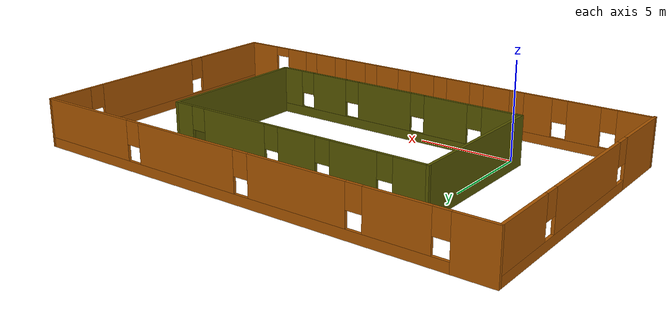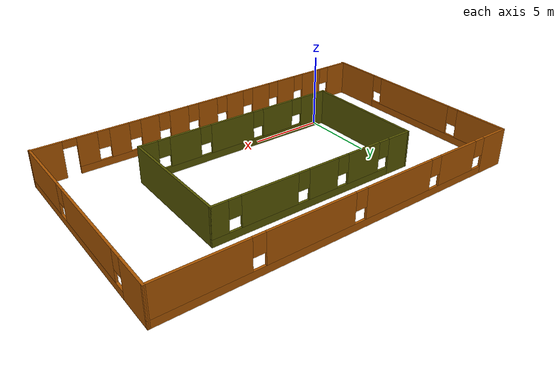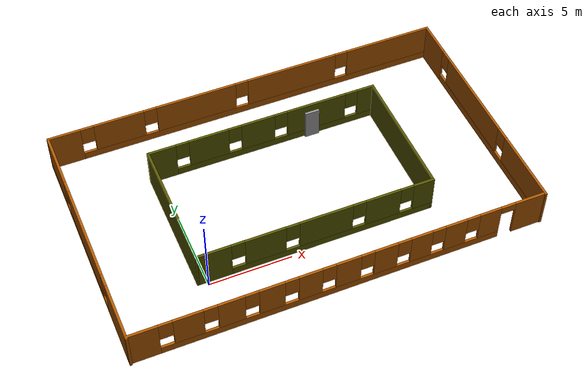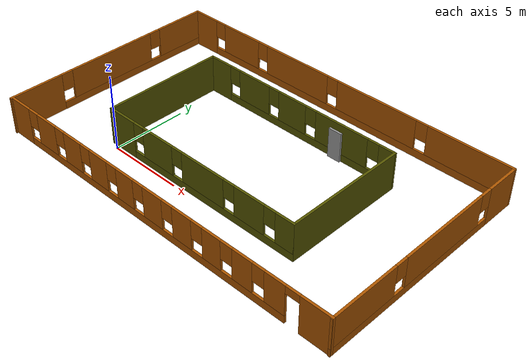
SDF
<?xml version='1.0'?>
<sdf version='1.6'>
  <model name='Building'>
    <pose frame=''>6.81216 4.24314 0 0 -0 0</pose>
    <link name='Door_1'>
      <collision name='Door_1_Collision'>
        <geometry>
          <box>
            <size>0.9 0.17 2</size>
          </box>
        </geometry>
        <pose frame=''>0 0 1 0 -0 0</pose>
      </collision>
      <visual name='Door_1_Visual'>
        <pose frame=''>0 0 1 0 -0 0</pose>
        <geometry>
          <box>
            <size>0.9 0.17 2</size>
          </box>
        </geometry>
        <material>
          <script>
            <uri>file://media/materials/scripts/gazebo.material</uri>
            <name>Gazebo/Grey</name>
          </script>
        </material>
      </visual>
      <pose frame=''>2.94986 3.99433 0 0 -0 0</pose>
    </link>
    <link name='Wall_0'>
      <pose frame=''>0 -7.35763 0 0 -0 0.002401</pose>
      <visual name='Wall_0_Visual_0'>
        <pose frame=''>-11.5578 0 1.25 0 -0 0</pose>
        <geometry>
          <box>
            <size>1.79475 0.15 2.5</size>
          </box>
        </geometry>
        <material>
          <script>
            <uri>file://media/materials/scripts/gazebo.material</uri>
            <name>Gazebo/Grey</name>
          </script>
          <ambient>0.666667 0.333333 0 1</ambient>
        </material>
        <meta>
          <layer>0</layer>
        </meta>
      </visual>
      <collision name='Wall_0_Collision_0'>
        <geometry>
          <box>
            <size>1.79475 0.15 2.5</size>
          </box>
        </geometry>
        <pose frame=''>-11.5578 0 1.25 0 -0 0</pose>
      </collision>
      <visual name='Wall_0_Visual_1'>
        <pose frame=''>11.4641 0 1.25 0 -0 0</pose>
        <geometry>
          <box>
            <size>1.98215 0.15 2.5</size>
          </box>
        </geometry>
        <material>
          <script>
            <uri>file://media/materials/scripts/gazebo.material</uri>
            <name>Gazebo/Grey</name>
          </script>
          <ambient>0.666667 0.333333 0 1</ambient>
        </material>
        <meta>
          <layer>0</layer>
        </meta>
      </visual>
      <collision name='Wall_0_Collision_1'>
        <geometry>
          <box>
            <size>1.98215 0.15 2.5</size>
          </box>
        </geometry>
        <pose frame=''>11.4641 0 1.25 0 -0 0</pose>
      </collision>
      <visual name='Wall_0_Visual_2'>
        <pose frame=''>-0.543697 0 0.25 0 -0 0</pose>
        <geometry>
          <box>
            <size>20.2334 0.15 0.5</size>
          </box>
        </geometry>
        <material>
          <script>
            <uri>file://media/materials/scripts/gazebo.material</uri>
            <name>Gazebo/Grey</name>
          </script>
          <ambient>0.666667 0.333333 0 1</ambient>
        </material>
        <meta>
          <layer>0</layer>
        </meta>
      </visual>
      <collision name='Wall_0_Collision_2'>
        <geometry>
          <box>
            <size>20.2334 0.15 0.5</size>
          </box>
        </geometry>
        <pose frame=''>-0.543697 0 0.25 0 -0 0</pose>
      </collision>
      <visual name='Wall_0_Visual_3'>
        <pose frame=''>-9.00211 0 1.5 0 -0 0</pose>
        <geometry>
          <box>
            <size>1.71659 0.15 2</size>
          </box>
        </geometry>
        <material>
          <script>
            <uri>file://media/materials/scripts/gazebo.material</uri>
            <name>Gazebo/Grey</name>
          </script>
          <ambient>0.666667 0.333333 0 1</ambient>
        </material>
        <meta>
          <layer>0</layer>
        </meta>
      </visual>
      <collision name='Wall_0_Collision_3'>
        <geometry>
          <box>
            <size>1.71659 0.15 2</size>
          </box>
        </geometry>
        <pose frame=''>-9.00211 0 1.5 0 -0 0</pose>
      </collision>
      <visual name='Wall_0_Visual_4'>
        <pose frame=''>-6.57805 0 1.5 0 -0 0</pose>
        <geometry>
          <box>
            <size>1.53154 0.15 2</size>
          </box>
        </geometry>
        <material>
          <script>
            <uri>file://media/materials/scripts/gazebo.material</uri>
            <name>Gazebo/Grey</name>
          </script>
          <ambient>0.666667 0.333333 0 1</ambient>
        </material>
        <meta>
          <layer>0</layer>
        </meta>
      </visual>
      <collision name='Wall_0_Collision_4'>
        <geometry>
          <box>
            <size>1.53154 0.15 2</size>
          </box>
        </geometry>
        <pose frame=''>-6.57805 0 1.5 0 -0 0</pose>
      </collision>
      <visual name='Wall_0_Visual_5'>
        <pose frame=''>-4.26501 0 1.5 0 -0 0</pose>
        <geometry>
          <box>
            <size>1.49454 0.15 2</size>
          </box>
        </geometry>
        <material>
          <script>
            <uri>file://media/materials/scripts/gazebo.material</uri>
            <name>Gazebo/Grey</name>
          </script>
          <ambient>0.666667 0.333333 0 1</ambient>
        </material>
        <meta>
          <layer>0</layer>
        </meta>
      </visual>
      <collision name='Wall_0_Collision_5'>
        <geometry>
          <box>
            <size>1.49454 0.15 2</size>
          </box>
        </geometry>
        <pose frame=''>-4.26501 0 1.5 0 -0 0</pose>
      </collision>
      <visual name='Wall_0_Visual_6'>
        <pose frame=''>-2.02311 0 1.5 0 -0 0</pose>
        <geometry>
          <box>
            <size>1.38925 0.15 2</size>
          </box>
        </geometry>
        <material>
          <script>
            <uri>file://media/materials/scripts/gazebo.material</uri>
            <name>Gazebo/Grey</name>
          </script>
          <ambient>0.666667 0.333333 0 1</ambient>
        </material>
        <meta>
          <layer>0</layer>
        </meta>
      </visual>
      <collision name='Wall_0_Collision_6'>
        <geometry>
          <box>
            <size>1.38925 0.15 2</size>
          </box>
        </geometry>
        <pose frame=''>-2.02311 0 1.5 0 -0 0</pose>
      </collision>
      <visual name='Wall_0_Visual_7'>
        <pose frame=''>0.21591 0 1.5 0 -0 0</pose>
        <geometry>
          <box>
            <size>1.48879 0.15 2</size>
          </box>
        </geometry>
        <material>
          <script>
            <uri>file://media/materials/scripts/gazebo.material</uri>
            <name>Gazebo/Grey</name>
          </script>
          <ambient>0.666667 0.333333 0 1</ambient>
        </material>
        <meta>
          <layer>0</layer>
        </meta>
      </visual>
      <collision name='Wall_0_Collision_7'>
        <geometry>
          <box>
            <size>1.48879 0.15 2</size>
          </box>
        </geometry>
        <pose frame=''>0.21591 0 1.5 0 -0 0</pose>
      </collision>
      <visual name='Wall_0_Visual_8'>
        <pose frame=''>2.47057 0 1.5 0 -0 0</pose>
        <geometry>
          <box>
            <size>1.42052 0.15 2</size>
          </box>
        </geometry>
        <material>
          <script>
            <uri>file://media/materials/scripts/gazebo.material</uri>
            <name>Gazebo/Grey</name>
          </script>
          <ambient>0.666667 0.333333 0 1</ambient>
        </material>
        <meta>
          <layer>0</layer>
        </meta>
      </visual>
      <collision name='Wall_0_Collision_8'>
        <geometry>
          <box>
            <size>1.42052 0.15 2</size>
          </box>
        </geometry>
        <pose frame=''>2.47057 0 1.5 0 -0 0</pose>
      </collision>
      <visual name='Wall_0_Visual_9'>
        <pose frame=''>4.63557 0 1.5 0 -0 0</pose>
        <geometry>
          <box>
            <size>1.30949 0.15 2</size>
          </box>
        </geometry>
        <material>
          <script>
            <uri>file://media/materials/scripts/gazebo.material</uri>
            <name>Gazebo/Grey</name>
          </script>
          <ambient>0.666667 0.333333 0 1</ambient>
        </material>
        <meta>
          <layer>0</layer>
        </meta>
      </visual>
      <collision name='Wall_0_Collision_9'>
        <geometry>
          <box>
            <size>1.30949 0.15 2</size>
          </box>
        </geometry>
        <pose frame=''>4.63557 0 1.5 0 -0 0</pose>
      </collision>
      <visual name='Wall_0_Visual_10'>
        <pose frame=''>6.76357 0 1.5 0 -0 0</pose>
        <geometry>
          <box>
            <size>1.3465 0.15 2</size>
          </box>
        </geometry>
        <material>
          <script>
            <uri>file://media/materials/scripts/gazebo.material</uri>
            <name>Gazebo/Grey</name>
          </script>
          <ambient>0.666667 0.333333 0 1</ambient>
        </material>
        <meta>
          <layer>0</layer>
        </meta>
      </visual>
      <collision name='Wall_0_Collision_10'>
        <geometry>
          <box>
            <size>1.3465 0.15 2</size>
          </box>
        </geometry>
        <pose frame=''>6.76357 0 1.5 0 -0 0</pose>
      </collision>
      <visual name='Wall_0_Visual_11'>
        <pose frame=''>8.90492 0 1.5 0 -0 0</pose>
        <geometry>
          <box>
            <size>1.33619 0.15 2</size>
          </box>
        </geometry>
        <material>
          <script>
            <uri>file://media/materials/scripts/gazebo.material</uri>
            <name>Gazebo/Grey</name>
          </script>
          <ambient>0.666667 0.333333 0 1</ambient>
        </material>
        <meta>
          <layer>0</layer>
        </meta>
      </visual>
      <collision name='Wall_0_Collision_11'>
        <geometry>
          <box>
            <size>1.33619 0.15 2</size>
          </box>
        </geometry>
        <pose frame=''>8.90492 0 1.5 0 -0 0</pose>
      </collision>
      <visual name='Wall_0_Visual_12'>
        <pose frame=''>-10.2604 0 1.9 0 -0 0</pose>
        <geometry>
          <box>
            <size>0.8 0.15 1.2</size>
          </box>
        </geometry>
        <material>
          <script>
            <uri>file://media/materials/scripts/gazebo.material</uri>
            <name>Gazebo/Grey</name>
          </script>
          <ambient>0.666667 0.333333 0 1</ambient>
        </material>
        <meta>
          <layer>0</layer>
        </meta>
      </visual>
      <collision name='Wall_0_Collision_12'>
        <geometry>
          <box>
            <size>0.8 0.15 1.2</size>
          </box>
        </geometry>
        <pose frame=''>-10.2604 0 1.9 0 -0 0</pose>
      </collision>
      <visual name='Wall_0_Visual_13'>
        <pose frame=''>-7.74382 0 1.9 0 -0 0</pose>
        <geometry>
          <box>
            <size>0.8 0.15 1.2</size>
          </box>
        </geometry>
        <material>
          <script>
            <uri>file://media/materials/scripts/gazebo.material</uri>
            <name>Gazebo/Grey</name>
          </script>
          <ambient>0.666667 0.333333 0 1</ambient>
        </material>
        <meta>
          <layer>0</layer>
        </meta>
      </visual>
      <collision name='Wall_0_Collision_13'>
        <geometry>
          <box>
            <size>0.8 0.15 1.2</size>
          </box>
        </geometry>
        <pose frame=''>-7.74382 0 1.9 0 -0 0</pose>
      </collision>
      <visual name='Wall_0_Visual_14'>
        <pose frame=''>-5.41228 0 1.9 0 -0 0</pose>
        <geometry>
          <box>
            <size>0.8 0.15 1.2</size>
          </box>
        </geometry>
        <material>
          <script>
            <uri>file://media/materials/scripts/gazebo.material</uri>
            <name>Gazebo/Grey</name>
          </script>
          <ambient>0.666667 0.333333 0 1</ambient>
        </material>
        <meta>
          <layer>0</layer>
        </meta>
      </visual>
      <collision name='Wall_0_Collision_14'>
        <geometry>
          <box>
            <size>0.8 0.15 1.2</size>
          </box>
        </geometry>
        <pose frame=''>-5.41228 0 1.9 0 -0 0</pose>
      </collision>
      <visual name='Wall_0_Visual_15'>
        <pose frame=''>-3.11774 0 1.9 0 -0 0</pose>
        <geometry>
          <box>
            <size>0.8 0.15 1.2</size>
          </box>
        </geometry>
        <material>
          <script>
            <uri>file://media/materials/scripts/gazebo.material</uri>
            <name>Gazebo/Grey</name>
          </script>
          <ambient>0.666667 0.333333 0 1</ambient>
        </material>
        <meta>
          <layer>0</layer>
        </meta>
      </visual>
      <collision name='Wall_0_Collision_15'>
        <geometry>
          <box>
            <size>0.8 0.15 1.2</size>
          </box>
        </geometry>
        <pose frame=''>-3.11774 0 1.9 0 -0 0</pose>
      </collision>
      <visual name='Wall_0_Visual_16'>
        <pose frame=''>-0.928486 0 1.9 0 -0 0</pose>
        <geometry>
          <box>
            <size>0.8 0.15 1.2</size>
          </box>
        </geometry>
        <material>
          <script>
            <uri>file://media/materials/scripts/gazebo.material</uri>
            <name>Gazebo/Grey</name>
          </script>
          <ambient>0.666667 0.333333 0 1</ambient>
        </material>
        <meta>
          <layer>0</layer>
        </meta>
      </visual>
      <collision name='Wall_0_Collision_16'>
        <geometry>
          <box>
            <size>0.8 0.15 1.2</size>
          </box>
        </geometry>
        <pose frame=''>-0.928486 0 1.9 0 -0 0</pose>
      </collision>
      <visual name='Wall_0_Visual_17'>
        <pose frame=''>1.36031 0 1.9 0 -0 0</pose>
        <geometry>
          <box>
            <size>0.8 0.15 1.2</size>
          </box>
        </geometry>
        <material>
          <script>
            <uri>file://media/materials/scripts/gazebo.material</uri>
            <name>Gazebo/Grey</name>
          </script>
          <ambient>0.666667 0.333333 0 1</ambient>
        </material>
        <meta>
          <layer>0</layer>
        </meta>
      </visual>
      <collision name='Wall_0_Collision_17'>
        <geometry>
          <box>
            <size>0.8 0.15 1.2</size>
          </box>
        </geometry>
        <pose frame=''>1.36031 0 1.9 0 -0 0</pose>
      </collision>
      <visual name='Wall_0_Visual_18'>
        <pose frame=''>3.58083 0 1.9 0 -0 0</pose>
        <geometry>
          <box>
            <size>0.8 0.15 1.2</size>
          </box>
        </geometry>
        <material>
          <script>
            <uri>file://media/materials/scripts/gazebo.material</uri>
            <name>Gazebo/Grey</name>
          </script>
          <ambient>0.666667 0.333333 0 1</ambient>
        </material>
        <meta>
          <layer>0</layer>
        </meta>
      </visual>
      <collision name='Wall_0_Collision_18'>
        <geometry>
          <box>
            <size>0.8 0.15 1.2</size>
          </box>
        </geometry>
        <pose frame=''>3.58083 0 1.9 0 -0 0</pose>
      </collision>
      <visual name='Wall_0_Visual_19'>
        <pose frame=''>5.69032 0 1.9 0 -0 0</pose>
        <geometry>
          <box>
            <size>0.8 0.15 1.2</size>
          </box>
        </geometry>
        <material>
          <script>
            <uri>file://media/materials/scripts/gazebo.material</uri>
            <name>Gazebo/Grey</name>
          </script>
          <ambient>0.666667 0.333333 0 1</ambient>
        </material>
        <meta>
          <layer>0</layer>
        </meta>
      </visual>
      <collision name='Wall_0_Collision_19'>
        <geometry>
          <box>
            <size>0.8 0.15 1.2</size>
          </box>
        </geometry>
        <pose frame=''>5.69032 0 1.9 0 -0 0</pose>
      </collision>
      <visual name='Wall_0_Visual_20'>
        <pose frame=''>7.83682 0 1.9 0 -0 0</pose>
        <geometry>
          <box>
            <size>0.8 0.15 1.2</size>
          </box>
        </geometry>
        <material>
          <script>
            <uri>file://media/materials/scripts/gazebo.material</uri>
            <name>Gazebo/Grey</name>
          </script>
          <ambient>0.666667 0.333333 0 1</ambient>
        </material>
        <meta>
          <layer>0</layer>
        </meta>
      </visual>
      <collision name='Wall_0_Collision_20'>
        <geometry>
          <box>
            <size>0.8 0.15 1.2</size>
          </box>
        </geometry>
        <pose frame=''>7.83682 0 1.9 0 -0 0</pose>
      </collision>
      <visual name='Wall_0_Visual_21'>
        <pose frame=''>10.023 0 2.25 0 -0 0</pose>
        <geometry>
          <box>
            <size>0.9 0.15 0.5</size>
          </box>
        </geometry>
        <material>
          <script>
            <uri>file://media/materials/scripts/gazebo.material</uri>
            <name>Gazebo/Grey</name>
          </script>
          <ambient>0.666667 0.333333 0 1</ambient>
        </material>
        <meta>
          <layer>0</layer>
        </meta>
      </visual>
      <collision name='Wall_0_Collision_21'>
        <geometry>
          <box>
            <size>0.9 0.15 0.5</size>
          </box>
        </geometry>
        <pose frame=''>10.023 0 2.25 0 -0 0</pose>
      </collision>
    </link>
    <link name='Wall_12'>
      <collision name='Wall_12_Collision'>
        <geometry>
          <box>
            <size>8.25 0.15 2.5</size>
          </box>
        </geometry>
        <pose frame=''>0 0 1.25 0 -0 0</pose>
      </collision>
      <visual name='Wall_12_Visual'>
        <pose frame=''>0 0 1.25 0 -0 0</pose>
        <geometry>
          <box>
            <size>8.25 0.15 2.5</size>
          </box>
        </geometry>
        <material>
          <script>
            <uri>file://media/materials/scripts/gazebo.material</uri>
            <name>Gazebo/Grey</name>
          </script>
          <ambient>0.333333 0.333333 0 1</ambient>
        </material>
        <meta>
          <layer>0</layer>
        </meta>
      </visual>
      <pose frame=''>-7.34158 0.069621 0 0 0 -1.5708</pose>
    </link>
    <link name='Wall_17'>
      <pose frame=''>-0.166583 -3.98038 0 0 -0 0</pose>
      <visual name='Wall_17_Visual_0'>
        <pose frame=''>-6.19156 0 1.25 0 -0 0</pose>
        <geometry>
          <box>
            <size>2.11688 0.15 2.5</size>
          </box>
        </geometry>
        <material>
          <script>
            <uri>file://media/materials/scripts/gazebo.material</uri>
            <name>Gazebo/Grey</name>
          </script>
          <ambient>0.333333 0.333333 0 1</ambient>
        </material>
        <meta>
          <layer>0</layer>
        </meta>
      </visual>
      <collision name='Wall_17_Collision_0'>
        <geometry>
          <box>
            <size>2.11688 0.15 2.5</size>
          </box>
        </geometry>
        <pose frame=''>-6.19156 0 1.25 0 -0 0</pose>
      </collision>
      <visual name='Wall_17_Visual_1'>
        <pose frame=''>1.05844 0 0.25 0 -0 0</pose>
        <geometry>
          <box>
            <size>12.3831 0.15 0.5</size>
          </box>
        </geometry>
        <material>
          <script>
            <uri>file://media/materials/scripts/gazebo.material</uri>
            <name>Gazebo/Grey</name>
          </script>
          <ambient>0.333333 0.333333 0 1</ambient>
        </material>
        <meta>
          <layer>0</layer>
        </meta>
      </visual>
      <collision name='Wall_17_Collision_1'>
        <geometry>
          <box>
            <size>12.3831 0.15 0.5</size>
          </box>
        </geometry>
        <pose frame=''>1.05844 0 0.25 0 -0 0</pose>
      </collision>
      <visual name='Wall_17_Visual_2'>
        <pose frame=''>-3.10907 0 1.5 0 -0 0</pose>
        <geometry>
          <box>
            <size>2.4481 0.15 2</size>
          </box>
        </geometry>
        <material>
          <script>
            <uri>file://media/materials/scripts/gazebo.material</uri>
            <name>Gazebo/Grey</name>
          </script>
          <ambient>0.333333 0.333333 0 1</ambient>
        </material>
        <meta>
          <layer>0</layer>
        </meta>
      </visual>
      <collision name='Wall_17_Collision_2'>
        <geometry>
          <box>
            <size>2.4481 0.15 2</size>
          </box>
        </geometry>
        <pose frame=''>-3.10907 0 1.5 0 -0 0</pose>
      </collision>
      <visual name='Wall_17_Visual_3'>
        <pose frame=''>0.545036 0 1.5 0 -0 0</pose>
        <geometry>
          <box>
            <size>3.26012 0.15 2</size>
          </box>
        </geometry>
        <material>
          <script>
            <uri>file://media/materials/scripts/gazebo.material</uri>
            <name>Gazebo/Grey</name>
          </script>
          <ambient>0.333333 0.333333 0 1</ambient>
        </material>
        <meta>
          <layer>0</layer>
        </meta>
      </visual>
      <collision name='Wall_17_Collision_3'>
        <geometry>
          <box>
            <size>3.26012 0.15 2</size>
          </box>
        </geometry>
        <pose frame=''>0.545036 0 1.5 0 -0 0</pose>
      </collision>
      <visual name='Wall_17_Visual_4'>
        <pose frame=''>4.05839 0 1.5 0 -0 0</pose>
        <geometry>
          <box>
            <size>2.1666 0.15 2</size>
          </box>
        </geometry>
        <material>
          <script>
            <uri>file://media/materials/scripts/gazebo.material</uri>
            <name>Gazebo/Grey</name>
          </script>
          <ambient>0.333333 0.333333 0 1</ambient>
        </material>
        <meta>
          <layer>0</layer>
        </meta>
      </visual>
      <collision name='Wall_17_Collision_4'>
        <geometry>
          <box>
            <size>2.1666 0.15 2</size>
          </box>
        </geometry>
        <pose frame=''>4.05839 0 1.5 0 -0 0</pose>
      </collision>
      <visual name='Wall_17_Visual_5'>
        <pose frame=''>6.59585 0 1.5 0 -0 0</pose>
        <geometry>
          <box>
            <size>1.30831 0.15 2</size>
          </box>
        </geometry>
        <material>
          <script>
            <uri>file://media/materials/scripts/gazebo.material</uri>
            <name>Gazebo/Grey</name>
          </script>
          <ambient>0.333333 0.333333 0 1</ambient>
        </material>
        <meta>
          <layer>0</layer>
        </meta>
      </visual>
      <collision name='Wall_17_Collision_5'>
        <geometry>
          <box>
            <size>1.30831 0.15 2</size>
          </box>
        </geometry>
        <pose frame=''>6.59585 0 1.5 0 -0 0</pose>
      </collision>
      <visual name='Wall_17_Visual_6'>
        <pose frame=''>-4.73312 0 1.9 0 -0 0</pose>
        <geometry>
          <box>
            <size>0.8 0.15 1.2</size>
          </box>
        </geometry>
        <material>
          <script>
            <uri>file://media/materials/scripts/gazebo.material</uri>
            <name>Gazebo/Grey</name>
          </script>
          <ambient>0.333333 0.333333 0 1</ambient>
        </material>
        <meta>
          <layer>0</layer>
        </meta>
      </visual>
      <collision name='Wall_17_Collision_6'>
        <geometry>
          <box>
            <size>0.8 0.15 1.2</size>
          </box>
        </geometry>
        <pose frame=''>-4.73312 0 1.9 0 -0 0</pose>
      </collision>
      <visual name='Wall_17_Visual_7'>
        <pose frame=''>-1.48502 0 1.9 0 -0 0</pose>
        <geometry>
          <box>
            <size>0.8 0.15 1.2</size>
          </box>
        </geometry>
        <material>
          <script>
            <uri>file://media/materials/scripts/gazebo.material</uri>
            <name>Gazebo/Grey</name>
          </script>
          <ambient>0.333333 0.333333 0 1</ambient>
        </material>
        <meta>
          <layer>0</layer>
        </meta>
      </visual>
      <collision name='Wall_17_Collision_7'>
        <geometry>
          <box>
            <size>0.8 0.15 1.2</size>
          </box>
        </geometry>
        <pose frame=''>-1.48502 0 1.9 0 -0 0</pose>
      </collision>
      <visual name='Wall_17_Visual_8'>
        <pose frame=''>2.5751 0 1.9 0 -0 0</pose>
        <geometry>
          <box>
            <size>0.8 0.15 1.2</size>
          </box>
        </geometry>
        <material>
          <script>
            <uri>file://media/materials/scripts/gazebo.material</uri>
            <name>Gazebo/Grey</name>
          </script>
          <ambient>0.333333 0.333333 0 1</ambient>
        </material>
        <meta>
          <layer>0</layer>
        </meta>
      </visual>
      <collision name='Wall_17_Collision_8'>
        <geometry>
          <box>
            <size>0.8 0.15 1.2</size>
          </box>
        </geometry>
        <pose frame=''>2.5751 0 1.9 0 -0 0</pose>
      </collision>
      <visual name='Wall_17_Visual_9'>
        <pose frame=''>5.54169 0 1.9 0 -0 0</pose>
        <geometry>
          <box>
            <size>0.8 0.15 1.2</size>
          </box>
        </geometry>
        <material>
          <script>
            <uri>file://media/materials/scripts/gazebo.material</uri>
            <name>Gazebo/Grey</name>
          </script>
          <ambient>0.333333 0.333333 0 1</ambient>
        </material>
        <meta>
          <layer>0</layer>
        </meta>
      </visual>
      <collision name='Wall_17_Collision_9'>
        <geometry>
          <box>
            <size>0.8 0.15 1.2</size>
          </box>
        </geometry>
        <pose frame=''>5.54169 0 1.9 0 -0 0</pose>
      </collision>
    </link>
    <link name='Wall_18'>
      <collision name='Wall_18_Collision'>
        <geometry>
          <box>
            <size>8.25 0.15 2.5</size>
          </box>
        </geometry>
        <pose frame=''>0 0 1.25 0 -0 0</pose>
      </collision>
      <visual name='Wall_18_Visual'>
        <pose frame=''>0 0 1.25 0 -0 0</pose>
        <geometry>
          <box>
            <size>8.25 0.15 2.5</size>
          </box>
        </geometry>
        <material>
          <script>
            <uri>file://media/materials/scripts/gazebo.material</uri>
            <name>Gazebo/Grey</name>
          </script>
          <ambient>0.333333 0.333333 0 1</ambient>
        </material>
        <meta>
          <layer>0</layer>
        </meta>
      </visual>
      <pose frame=''>7.00842 0.069621 0 0 -0 1.5708</pose>
    </link>
    <link name='Wall_20'>
      <pose frame=''>-0.166583 4.11962 0 0 -0 0</pose>
      <visual name='Wall_20_Visual_0'>
        <pose frame=''>-6.37201 0 1.25 0 -0 0</pose>
        <geometry>
          <box>
            <size>1.75598 0.15 2.5</size>
          </box>
        </geometry>
        <material>
          <script>
            <uri>file://media/materials/scripts/gazebo.material</uri>
            <name>Gazebo/Grey</name>
          </script>
          <ambient>0.333333 0.333333 0 1</ambient>
        </material>
        <meta>
          <layer>0</layer>
        </meta>
      </visual>
      <collision name='Wall_20_Collision_0'>
        <geometry>
          <box>
            <size>1.75598 0.15 2.5</size>
          </box>
        </geometry>
        <pose frame=''>-6.37201 0 1.25 0 -0 0</pose>
      </collision>
      <visual name='Wall_20_Visual_1'>
        <pose frame=''>0.87799 0 0.25 0 -0 0</pose>
        <geometry>
          <box>
            <size>12.744 0.15 0.5</size>
          </box>
        </geometry>
        <material>
          <script>
            <uri>file://media/materials/scripts/gazebo.material</uri>
            <name>Gazebo/Grey</name>
          </script>
          <ambient>0.333333 0.333333 0 1</ambient>
        </material>
        <meta>
          <layer>0</layer>
        </meta>
      </visual>
      <collision name='Wall_20_Collision_1'>
        <geometry>
          <box>
            <size>12.744 0.15 0.5</size>
          </box>
        </geometry>
        <pose frame=''>0.87799 0 0.25 0 -0 0</pose>
      </collision>
      <visual name='Wall_20_Visual_2'>
        <pose frame=''>-3.44742 0 1.5 0 -0 0</pose>
        <geometry>
          <box>
            <size>2.49321 0.15 2</size>
          </box>
        </geometry>
        <material>
          <script>
            <uri>file://media/materials/scripts/gazebo.material</uri>
            <name>Gazebo/Grey</name>
          </script>
          <ambient>0.333333 0.333333 0 1</ambient>
        </material>
        <meta>
          <layer>0</layer>
        </meta>
      </visual>
      <collision name='Wall_20_Collision_2'>
        <geometry>
          <box>
            <size>2.49321 0.15 2</size>
          </box>
        </geometry>
        <pose frame=''>-3.44742 0 1.5 0 -0 0</pose>
      </collision>
      <visual name='Wall_20_Visual_3'>
        <pose frame=''>-0.334657 0 1.5 0 -0 0</pose>
        <geometry>
          <box>
            <size>2.13231 0.15 2</size>
          </box>
        </geometry>
        <material>
          <script>
            <uri>file://media/materials/scripts/gazebo.material</uri>
            <name>Gazebo/Grey</name>
          </script>
          <ambient>0.333333 0.333333 0 1</ambient>
        </material>
        <meta>
          <layer>0</layer>
        </meta>
      </visual>
      <collision name='Wall_20_Collision_3'>
        <geometry>
          <box>
            <size>2.13231 0.15 2</size>
          </box>
        </geometry>
        <pose frame=''>-0.334657 0 1.5 0 -0 0</pose>
      </collision>
      <visual name='Wall_20_Visual_4'>
        <pose frame=''>3.43223 0 1.5 0 -0 0</pose>
        <geometry>
          <box>
            <size>3.80147 0.15 2</size>
          </box>
        </geometry>
        <material>
          <script>
            <uri>file://media/materials/scripts/gazebo.material</uri>
            <name>Gazebo/Grey</name>
          </script>
          <ambient>0.333333 0.333333 0 1</ambient>
        </material>
        <meta>
          <layer>0</layer>
        </meta>
      </visual>
      <collision name='Wall_20_Collision_4'>
        <geometry>
          <box>
            <size>3.80147 0.15 2</size>
          </box>
        </geometry>
        <pose frame=''>3.43223 0 1.5 0 -0 0</pose>
      </collision>
      <visual name='Wall_20_Visual_5'>
        <pose frame=''>6.69148 0 1.5 0 -0 0</pose>
        <geometry>
          <box>
            <size>1.11703 0.15 2</size>
          </box>
        </geometry>
        <material>
          <script>
            <uri>file://media/materials/scripts/gazebo.material</uri>
            <name>Gazebo/Grey</name>
          </script>
          <ambient>0.333333 0.333333 0 1</ambient>
        </material>
        <meta>
          <layer>0</layer>
        </meta>
      </visual>
      <collision name='Wall_20_Collision_5'>
        <geometry>
          <box>
            <size>1.11703 0.15 2</size>
          </box>
        </geometry>
        <pose frame=''>6.69148 0 1.5 0 -0 0</pose>
      </collision>
      <visual name='Wall_20_Visual_6'>
        <pose frame=''>-5.09402 0 1.9 0 -0 0</pose>
        <geometry>
          <box>
            <size>0.8 0.15 1.2</size>
          </box>
        </geometry>
        <material>
          <script>
            <uri>file://media/materials/scripts/gazebo.material</uri>
            <name>Gazebo/Grey</name>
          </script>
          <ambient>0.333333 0.333333 0 1</ambient>
        </material>
        <meta>
          <layer>0</layer>
        </meta>
      </visual>
      <collision name='Wall_20_Collision_6'>
        <geometry>
          <box>
            <size>0.8 0.15 1.2</size>
          </box>
        </geometry>
        <pose frame=''>-5.09402 0 1.9 0 -0 0</pose>
      </collision>
      <visual name='Wall_20_Visual_7'>
        <pose frame=''>-1.80081 0 1.9 0 -0 0</pose>
        <geometry>
          <box>
            <size>0.8 0.15 1.2</size>
          </box>
        </geometry>
        <material>
          <script>
            <uri>file://media/materials/scripts/gazebo.material</uri>
            <name>Gazebo/Grey</name>
          </script>
          <ambient>0.333333 0.333333 0 1</ambient>
        </material>
        <meta>
          <layer>0</layer>
        </meta>
      </visual>
      <collision name='Wall_20_Collision_7'>
        <geometry>
          <box>
            <size>0.8 0.15 1.2</size>
          </box>
        </geometry>
        <pose frame=''>-1.80081 0 1.9 0 -0 0</pose>
      </collision>
      <visual name='Wall_20_Visual_8'>
        <pose frame=''>1.1315 0 1.9 0 -0 0</pose>
        <geometry>
          <box>
            <size>0.8 0.15 1.2</size>
          </box>
        </geometry>
        <material>
          <script>
            <uri>file://media/materials/scripts/gazebo.material</uri>
            <name>Gazebo/Grey</name>
          </script>
          <ambient>0.333333 0.333333 0 1</ambient>
        </material>
        <meta>
          <layer>0</layer>
        </meta>
      </visual>
      <collision name='Wall_20_Collision_8'>
        <geometry>
          <box>
            <size>0.8 0.15 1.2</size>
          </box>
        </geometry>
        <pose frame=''>1.1315 0 1.9 0 -0 0</pose>
      </collision>
      <visual name='Wall_20_Visual_9'>
        <pose frame=''>5.73297 0 1.9 0 -0 0</pose>
        <geometry>
          <box>
            <size>0.8 0.15 1.2</size>
          </box>
        </geometry>
        <material>
          <script>
            <uri>file://media/materials/scripts/gazebo.material</uri>
            <name>Gazebo/Grey</name>
          </script>
          <ambient>0.333333 0.333333 0 1</ambient>
        </material>
        <meta>
          <layer>0</layer>
        </meta>
      </visual>
      <collision name='Wall_20_Collision_9'>
        <geometry>
          <box>
            <size>0.8 0.15 1.2</size>
          </box>
        </geometry>
        <pose frame=''>5.73297 0 1.9 0 -0 0</pose>
      </collision>
    </link>
    <link name='Wall_3'>
      <pose frame=''>-12.3798 -0.052578 0 0 -0 1.5708</pose>
      <visual name='Wall_3_Visual_0'>
        <pose frame=''>-5.67059 0 1.25 0 -0 0</pose>
        <geometry>
          <box>
            <size>3.65881 0.15 2.5</size>
          </box>
        </geometry>
        <material>
          <script>
            <uri>file://media/materials/scripts/gazebo.material</uri>
            <name>Gazebo/Grey</name>
          </script>
          <ambient>0.666667 0.333333 0 1</ambient>
        </material>
        <meta>
          <layer>0</layer>
        </meta>
      </visual>
      <collision name='Wall_3_Collision_0'>
        <geometry>
          <box>
            <size>3.65881 0.15 2.5</size>
          </box>
        </geometry>
        <pose frame=''>-5.67059 0 1.25 0 -0 0</pose>
      </collision>
      <visual name='Wall_3_Visual_1'>
        <pose frame=''>1.8294 0 0.25 0 -0 0</pose>
        <geometry>
          <box>
            <size>11.3412 0.15 0.5</size>
          </box>
        </geometry>
        <material>
          <script>
            <uri>file://media/materials/scripts/gazebo.material</uri>
            <name>Gazebo/Grey</name>
          </script>
          <ambient>0.666667 0.333333 0 1</ambient>
        </material>
        <meta>
          <layer>0</layer>
        </meta>
      </visual>
      <collision name='Wall_3_Collision_1'>
        <geometry>
          <box>
            <size>11.3412 0.15 0.5</size>
          </box>
        </geometry>
        <pose frame=''>1.8294 0 0.25 0 -0 0</pose>
      </collision>
      <visual name='Wall_3_Visual_2'>
        <pose frame=''>0.084691 0 1.5 0 -0 0</pose>
        <geometry>
          <box>
            <size>6.25176 0.15 2</size>
          </box>
        </geometry>
        <material>
          <script>
            <uri>file://media/materials/scripts/gazebo.material</uri>
            <name>Gazebo/Grey</name>
          </script>
          <ambient>0.666667 0.333333 0 1</ambient>
        </material>
        <meta>
          <layer>0</layer>
        </meta>
      </visual>
      <collision name='Wall_3_Collision_2'>
        <geometry>
          <box>
            <size>6.25176 0.15 2</size>
          </box>
        </geometry>
        <pose frame=''>0.084691 0 1.5 0 -0 0</pose>
      </collision>
      <visual name='Wall_3_Visual_3'>
        <pose frame=''>5.75528 0 1.5 0 -0 0</pose>
        <geometry>
          <box>
            <size>3.48943 0.15 2</size>
          </box>
        </geometry>
        <material>
          <script>
            <uri>file://media/materials/scripts/gazebo.material</uri>
            <name>Gazebo/Grey</name>
          </script>
          <ambient>0.666667 0.333333 0 1</ambient>
        </material>
        <meta>
          <layer>0</layer>
        </meta>
      </visual>
      <collision name='Wall_3_Collision_3'>
        <geometry>
          <box>
            <size>3.48943 0.15 2</size>
          </box>
        </geometry>
        <pose frame=''>5.75528 0 1.5 0 -0 0</pose>
      </collision>
      <visual name='Wall_3_Visual_4'>
        <pose frame=''>-3.44119 0 1.9 0 -0 0</pose>
        <geometry>
          <box>
            <size>0.8 0.15 1.2</size>
          </box>
        </geometry>
        <material>
          <script>
            <uri>file://media/materials/scripts/gazebo.material</uri>
            <name>Gazebo/Grey</name>
          </script>
          <ambient>0.666667 0.333333 0 1</ambient>
        </material>
        <meta>
          <layer>0</layer>
        </meta>
      </visual>
      <collision name='Wall_3_Collision_4'>
        <geometry>
          <box>
            <size>0.8 0.15 1.2</size>
          </box>
        </geometry>
        <pose frame=''>-3.44119 0 1.9 0 -0 0</pose>
      </collision>
      <visual name='Wall_3_Visual_5'>
        <pose frame=''>3.61057 0 1.9 0 -0 0</pose>
        <geometry>
          <box>
            <size>0.8 0.15 1.2</size>
          </box>
        </geometry>
        <material>
          <script>
            <uri>file://media/materials/scripts/gazebo.material</uri>
            <name>Gazebo/Grey</name>
          </script>
          <ambient>0.666667 0.333333 0 1</ambient>
        </material>
        <meta>
          <layer>0</layer>
        </meta>
      </visual>
      <collision name='Wall_3_Collision_5'>
        <geometry>
          <box>
            <size>0.8 0.15 1.2</size>
          </box>
        </geometry>
        <pose frame=''>3.61057 0 1.9 0 -0 0</pose>
      </collision>
    </link>
    <link name='Wall_6'>
      <pose frame=''>0.000109 7.47009 0 0 -0 0.000601</pose>
      <visual name='Wall_6_Visual_0'>
        <pose frame=''>-11.4439 0 1.25 0 -0 0</pose>
        <geometry>
          <box>
            <size>2.02242 0.15 2.5</size>
          </box>
        </geometry>
        <material>
          <script>
            <uri>file://media/materials/scripts/gazebo.material</uri>
            <name>Gazebo/Grey</name>
          </script>
          <ambient>0.666667 0.333333 0 1</ambient>
        </material>
        <meta>
          <layer>0</layer>
        </meta>
      </visual>
      <collision name='Wall_6_Collision_0'>
        <geometry>
          <box>
            <size>2.02242 0.15 2.5</size>
          </box>
        </geometry>
        <pose frame=''>-11.4439 0 1.25 0 -0 0</pose>
      </collision>
      <visual name='Wall_6_Visual_1'>
        <pose frame=''>1.01121 0 0.25 0 -0 0</pose>
        <geometry>
          <box>
            <size>22.8878 0.15 0.5</size>
          </box>
        </geometry>
        <material>
          <script>
            <uri>file://media/materials/scripts/gazebo.material</uri>
            <name>Gazebo/Grey</name>
          </script>
          <ambient>0.666667 0.333333 0 1</ambient>
        </material>
        <meta>
          <layer>0</layer>
        </meta>
      </visual>
      <collision name='Wall_6_Collision_1'>
        <geometry>
          <box>
            <size>22.8878 0.15 0.5</size>
          </box>
        </geometry>
        <pose frame=''>1.01121 0 0.25 0 -0 0</pose>
      </collision>
      <visual name='Wall_6_Visual_2'>
        <pose frame=''>-8.07503 0 1.5 0 -0 0</pose>
        <geometry>
          <box>
            <size>3.11533 0.15 2</size>
          </box>
        </geometry>
        <material>
          <script>
            <uri>file://media/materials/scripts/gazebo.material</uri>
            <name>Gazebo/Grey</name>
          </script>
          <ambient>0.666667 0.333333 0 1</ambient>
        </material>
        <meta>
          <layer>0</layer>
        </meta>
      </visual>
      <collision name='Wall_6_Collision_2'>
        <geometry>
          <box>
            <size>3.11533 0.15 2</size>
          </box>
        </geometry>
        <pose frame=''>-8.07503 0 1.5 0 -0 0</pose>
      </collision>
      <visual name='Wall_6_Visual_3'>
        <pose frame=''>-3.18084 0 1.5 0 -0 0</pose>
        <geometry>
          <box>
            <size>5.07304 0.15 2</size>
          </box>
        </geometry>
        <material>
          <script>
            <uri>file://media/materials/scripts/gazebo.material</uri>
            <name>Gazebo/Grey</name>
          </script>
          <ambient>0.666667 0.333333 0 1</ambient>
        </material>
        <meta>
          <layer>0</layer>
        </meta>
      </visual>
      <collision name='Wall_6_Collision_3'>
        <geometry>
          <box>
            <size>5.07304 0.15 2</size>
          </box>
        </geometry>
        <pose frame=''>-3.18084 0 1.5 0 -0 0</pose>
      </collision>
      <visual name='Wall_6_Visual_4'>
        <pose frame=''>3.07789 0 1.5 0 -0 0</pose>
        <geometry>
          <box>
            <size>5.84443 0.15 2</size>
          </box>
        </geometry>
        <material>
          <script>
            <uri>file://media/materials/scripts/gazebo.material</uri>
            <name>Gazebo/Grey</name>
          </script>
          <ambient>0.666667 0.333333 0 1</ambient>
        </material>
        <meta>
          <layer>0</layer>
        </meta>
      </visual>
      <collision name='Wall_6_Collision_4'>
        <geometry>
          <box>
            <size>5.84443 0.15 2</size>
          </box>
        </geometry>
        <pose frame=''>3.07789 0 1.5 0 -0 0</pose>
      </collision>
      <visual name='Wall_6_Visual_5'>
        <pose frame=''>9.62761 0 1.5 0 -0 0</pose>
        <geometry>
          <box>
            <size>5.65501 0.15 2</size>
          </box>
        </geometry>
        <material>
          <script>
            <uri>file://media/materials/scripts/gazebo.material</uri>
            <name>Gazebo/Grey</name>
          </script>
          <ambient>0.666667 0.333333 0 1</ambient>
        </material>
        <meta>
          <layer>0</layer>
        </meta>
      </visual>
      <collision name='Wall_6_Collision_5'>
        <geometry>
          <box>
            <size>5.65501 0.15 2</size>
          </box>
        </geometry>
        <pose frame=''>9.62761 0 1.5 0 -0 0</pose>
      </collision>
      <visual name='Wall_6_Visual_6'>
        <pose frame=''>-10.0327 0 1.9 0 -0 0</pose>
        <geometry>
          <box>
            <size>0.8 0.15 1.2</size>
          </box>
        </geometry>
        <material>
          <script>
            <uri>file://media/materials/scripts/gazebo.material</uri>
            <name>Gazebo/Grey</name>
          </script>
          <ambient>0.666667 0.333333 0 1</ambient>
        </material>
        <meta>
          <layer>0</layer>
        </meta>
      </visual>
      <collision name='Wall_6_Collision_6'>
        <geometry>
          <box>
            <size>0.8 0.15 1.2</size>
          </box>
        </geometry>
        <pose frame=''>-10.0327 0 1.9 0 -0 0</pose>
      </collision>
      <visual name='Wall_6_Visual_7'>
        <pose frame=''>-6.11736 0 1.9 0 -0 0</pose>
        <geometry>
          <box>
            <size>0.8 0.15 1.2</size>
          </box>
        </geometry>
        <material>
          <script>
            <uri>file://media/materials/scripts/gazebo.material</uri>
            <name>Gazebo/Grey</name>
          </script>
          <ambient>0.666667 0.333333 0 1</ambient>
        </material>
        <meta>
          <layer>0</layer>
        </meta>
      </visual>
      <collision name='Wall_6_Collision_7'>
        <geometry>
          <box>
            <size>0.8 0.15 1.2</size>
          </box>
        </geometry>
        <pose frame=''>-6.11736 0 1.9 0 -0 0</pose>
      </collision>
      <visual name='Wall_6_Visual_8'>
        <pose frame=''>-0.244321 0 1.9 0 -0 0</pose>
        <geometry>
          <box>
            <size>0.8 0.15 1.2</size>
          </box>
        </geometry>
        <material>
          <script>
            <uri>file://media/materials/scripts/gazebo.material</uri>
            <name>Gazebo/Grey</name>
          </script>
          <ambient>0.666667 0.333333 0 1</ambient>
        </material>
        <meta>
          <layer>0</layer>
        </meta>
      </visual>
      <collision name='Wall_6_Collision_8'>
        <geometry>
          <box>
            <size>0.8 0.15 1.2</size>
          </box>
        </geometry>
        <pose frame=''>-0.244321 0 1.9 0 -0 0</pose>
      </collision>
      <visual name='Wall_6_Visual_9'>
        <pose frame=''>6.40011 0 1.9 0 -0 0</pose>
        <geometry>
          <box>
            <size>0.8 0.15 1.2</size>
          </box>
        </geometry>
        <material>
          <script>
            <uri>file://media/materials/scripts/gazebo.material</uri>
            <name>Gazebo/Grey</name>
          </script>
          <ambient>0.666667 0.333333 0 1</ambient>
        </material>
        <meta>
          <layer>0</layer>
        </meta>
      </visual>
      <collision name='Wall_6_Collision_9'>
        <geometry>
          <box>
            <size>0.8 0.15 1.2</size>
          </box>
        </geometry>
        <pose frame=''>6.40011 0 1.9 0 -0 0</pose>
      </collision>
    </link>
    <link name='Wall_9'>
      <pose frame=''>12.38 0.052534 0 0 0 -1.5708</pose>
      <visual name='Wall_9_Visual_0'>
        <pose frame=''>-6.29597 0 1.25 0 -0 0</pose>
        <geometry>
          <box>
            <size>2.40805 0.15 2.5</size>
          </box>
        </geometry>
        <material>
          <script>
            <uri>file://media/materials/scripts/gazebo.material</uri>
            <name>Gazebo/Grey</name>
          </script>
          <ambient>0.666667 0.333333 0 1</ambient>
        </material>
        <meta>
          <layer>0</layer>
        </meta>
      </visual>
      <collision name='Wall_9_Collision_0'>
        <geometry>
          <box>
            <size>2.40805 0.15 2.5</size>
          </box>
        </geometry>
        <pose frame=''>-6.29597 0 1.25 0 -0 0</pose>
      </collision>
      <visual name='Wall_9_Visual_1'>
        <pose frame=''>1.20403 0 0.25 0 -0 0</pose>
        <geometry>
          <box>
            <size>12.5919 0.15 0.5</size>
          </box>
        </geometry>
        <material>
          <script>
            <uri>file://media/materials/scripts/gazebo.material</uri>
            <name>Gazebo/Grey</name>
          </script>
          <ambient>0.666667 0.333333 0 1</ambient>
        </material>
        <meta>
          <layer>0</layer>
        </meta>
      </visual>
      <collision name='Wall_9_Collision_1'>
        <geometry>
          <box>
            <size>12.5919 0.15 0.5</size>
          </box>
        </geometry>
        <pose frame=''>1.20403 0 0.25 0 -0 0</pose>
      </collision>
      <visual name='Wall_9_Visual_2'>
        <pose frame=''>-1.13249 0 1.5 0 -0 0</pose>
        <geometry>
          <box>
            <size>6.31892 0.15 2</size>
          </box>
        </geometry>
        <material>
          <script>
            <uri>file://media/materials/scripts/gazebo.material</uri>
            <name>Gazebo/Grey</name>
          </script>
          <ambient>0.666667 0.333333 0 1</ambient>
        </material>
        <meta>
          <layer>0</layer>
        </meta>
      </visual>
      <collision name='Wall_9_Collision_2'>
        <geometry>
          <box>
            <size>6.31892 0.15 2</size>
          </box>
        </geometry>
        <pose frame=''>-1.13249 0 1.5 0 -0 0</pose>
      </collision>
      <visual name='Wall_9_Visual_3'>
        <pose frame=''>5.16349 0 1.5 0 -0 0</pose>
        <geometry>
          <box>
            <size>4.67303 0.15 2</size>
          </box>
        </geometry>
        <material>
          <script>
            <uri>file://media/materials/scripts/gazebo.material</uri>
            <name>Gazebo/Grey</name>
          </script>
          <ambient>0.666667 0.333333 0 1</ambient>
        </material>
        <meta>
          <layer>0</layer>
        </meta>
      </visual>
      <collision name='Wall_9_Collision_3'>
        <geometry>
          <box>
            <size>4.67303 0.15 2</size>
          </box>
        </geometry>
        <pose frame=''>5.16349 0 1.5 0 -0 0</pose>
      </collision>
      <visual name='Wall_9_Visual_4'>
        <pose frame=''>-4.69195 0 1.9 0 -0 0</pose>
        <geometry>
          <box>
            <size>0.8 0.15 1.2</size>
          </box>
        </geometry>
        <material>
          <script>
            <uri>file://media/materials/scripts/gazebo.material</uri>
            <name>Gazebo/Grey</name>
          </script>
          <ambient>0.666667 0.333333 0 1</ambient>
        </material>
        <meta>
          <layer>0</layer>
        </meta>
      </visual>
      <collision name='Wall_9_Collision_4'>
        <geometry>
          <box>
            <size>0.8 0.15 1.2</size>
          </box>
        </geometry>
        <pose frame=''>-4.69195 0 1.9 0 -0 0</pose>
      </collision>
      <visual name='Wall_9_Visual_5'>
        <pose frame=''>2.42697 0 1.9 0 -0 0</pose>
        <geometry>
          <box>
            <size>0.8 0.15 1.2</size>
          </box>
        </geometry>
        <material>
          <script>
            <uri>file://media/materials/scripts/gazebo.material</uri>
            <name>Gazebo/Grey</name>
          </script>
          <ambient>0.666667 0.333333 0 1</ambient>
        </material>
        <meta>
          <layer>0</layer>
        </meta>
      </visual>
      <collision name='Wall_9_Collision_5'>
        <geometry>
          <box>
            <size>0.8 0.15 1.2</size>
          </box>
        </geometry>
        <pose frame=''>2.42697 0 1.9 0 -0 0</pose>
      </collision>
    </link>
    <static>1</static>
  </model>
</sdf>
